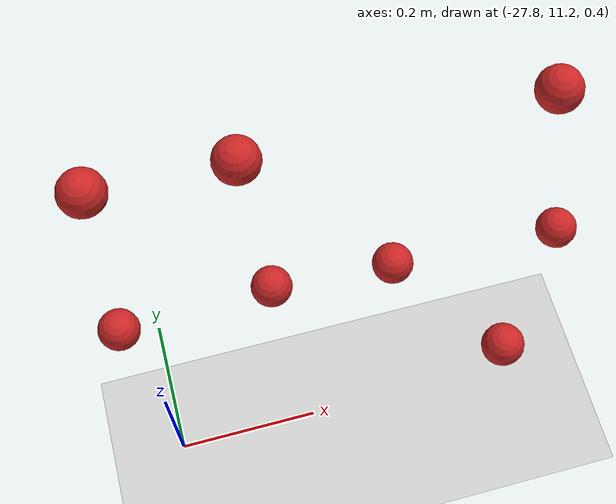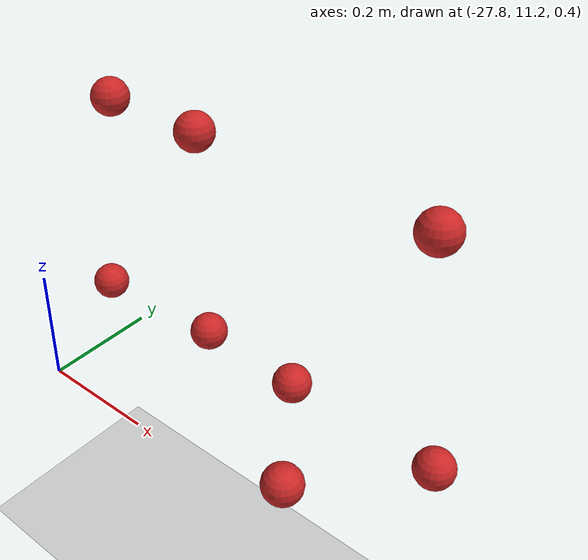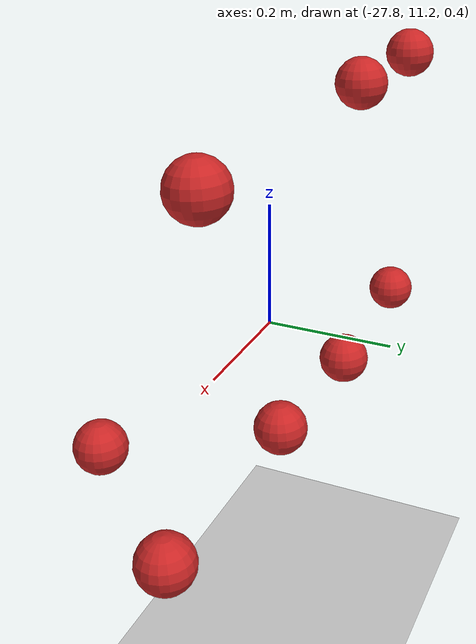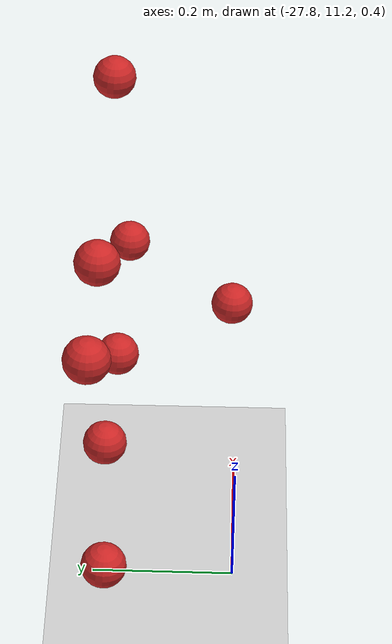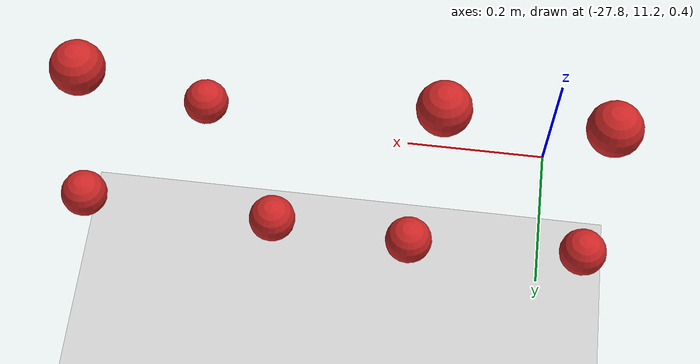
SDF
<sdf version="1.7">
 <world name="default">
  <model name="ground_plane">
   <static>1</static>
   <link name="link">
    <collision name="collision">
     <geometry><plane><normal>0 0 1</normal><size>100 100</size></plane></geometry>
     <surface>
      <contact><collide_bitmask>65535</collide_bitmask></contact>
      <friction><ode><mu>100</mu><mu2>50</mu2></ode></friction>
     </surface>
    </collision>
    <visual name="visual">
     <cast_shadows>0</cast_shadows>
     <geometry><plane><normal>0 0 1</normal><size>100 100</size></plane></geometry>
     <material>
      <script><uri>file://media/materials/scripts/gazebo.material</uri><name>Gazebo/Grey</name></script>
     </material>
    </visual>
   </link>
  </model>
  <model name="RoboCup SPL Ball_clone_clone">
   <static>0</static>
   <link name="ball">
    <inertial>
     <mass>0.0056</mass>
     <inertia>
      <ixx>2.37e-06</ixx>
      <iyy>2.37e-06</iyy>
      <izz>2.37e-06</izz>
      <ixy>0</ixy>
      <ixz>0</ixz>
      <iyz>0</iyz>
     </inertia>
    </inertial>
    <collision name="collision"><geometry><sphere><radius>0.0325</radius></sphere></geometry></collision>
    <visual name="visual">
     <geometry><sphere><radius>0.0325</radius></sphere></geometry>
     <material>
      <script><uri>file://media/materials/scripts/gazebo.material</uri><name>Gazebo/RedBright</name></script>
     </material>
    </visual>
   </link>
   <pose>-27.8541 11.3805 0.4725 0.062088 -0 0</pose>
  </model>
  <model name="RoboCup SPL Ball_clone_clone_0">
   <static>0</static>
   <link name="ball">
    <inertial>
     <mass>0.0056</mass>
     <inertia>
      <ixx>2.37e-06</ixx>
      <iyy>2.37e-06</iyy>
      <izz>2.37e-06</izz>
      <ixy>0</ixy>
      <ixz>0</ixz>
      <iyz>0</iyz>
     </inertia>
    </inertial>
    <collision name="collision"><geometry><sphere><radius>0.0325</radius></sphere></geometry></collision>
    <visual name="visual">
     <geometry><sphere><radius>0.0325</radius></sphere></geometry>
     <material>
      <script><uri>file://media/materials/scripts/gazebo.material</uri><name>Gazebo/RedBright</name></script>
     </material>
    </visual>
   </link>
   <pose>-27.6148 11.3903 0.4725 0.062088 -0 0</pose>
  </model>
  <model name="RoboCup SPL Ball_clone_clone_1">
   <static>0</static>
   <link name="ball">
    <inertial>
     <mass>0.0056</mass>
     <inertia>
      <ixx>2.37e-06</ixx>
      <iyy>2.37e-06</iyy>
      <izz>2.37e-06</izz>
      <ixy>0</ixy>
      <ixz>0</ixz>
      <iyz>0</iyz>
     </inertia>
    </inertial>
    <collision name="collision"><geometry><sphere><radius>0.0325</radius></sphere></geometry></collision>
    <visual name="visual">
     <geometry><sphere><radius>0.0325</radius></sphere></geometry>
     <material>
      <script><uri>file://media/materials/scripts/gazebo.material</uri><name>Gazebo/RedBright</name></script>
     </material>
    </visual>
   </link>
   <pose>-27.4236 11.3798 0.4725 0.062088 -0 0</pose>
  </model>
  <model name="RoboCup SPL Ball_clone_clone_3">
   <static>0</static>
   <link name="ball">
    <inertial>
     <mass>0.0056</mass>
     <inertia>
      <ixx>2.37e-06</ixx>
      <iyy>2.37e-06</iyy>
      <izz>2.37e-06</izz>
      <ixy>0</ixy>
      <ixz>0</ixz>
      <iyz>0</iyz>
     </inertia>
    </inertial>
    <collision name="collision"><geometry><sphere><radius>0.0325</radius></sphere></geometry></collision>
    <visual name="visual">
     <geometry><sphere><radius>0.0325</radius></sphere></geometry>
     <material>
      <script><uri>file://media/materials/scripts/gazebo.material</uri><name>Gazebo/RedBright</name></script>
     </material>
    </visual>
   </link>
   <pose>-27.1566 11.372 0.4725 0.062088 -0 0</pose>
  </model>
  <model name="RoboCup SPL Ball_clone_clone_1_clone">
   <static>0</static>
   <link name="ball">
    <inertial>
     <mass>0.0056</mass>
     <inertia>
      <ixx>2.37e-06</ixx>
      <iyy>2.37e-06</iyy>
      <izz>2.37e-06</izz>
      <ixy>0</ixy>
      <ixz>0</ixz>
      <iyz>0</iyz>
     </inertia>
    </inertial>
    <collision name="collision"><geometry><sphere><radius>0.0325</radius></sphere></geometry></collision>
    <visual name="visual">
     <geometry><sphere><radius>0.0325</radius></sphere></geometry>
     <material>
      <script><uri>file://media/materials/scripts/gazebo.material</uri><name>Gazebo/RedBright</name></script>
     </material>
    </visual>
   </link>
   <pose>-27.3027 11.2055 0.4725 0.062088 -0 0</pose>
  </model>
  <model name="RoboCup SPL Ball_clone_clone_2_clone_1">
   <static>0</static>
   <link name="ball">
    <inertial>
     <mass>0.0056</mass>
     <inertia>
      <ixx>2.37e-06</ixx>
      <iyy>2.37e-06</iyy>
      <izz>2.37e-06</izz>
      <ixy>0</ixy>
      <ixz>0</ixz>
      <iyz>0</iyz>
     </inertia>
    </inertial>
    <collision name="collision"><geometry><sphere><radius>0.0325</radius></sphere></geometry></collision>
    <visual name="visual">
     <geometry><sphere><radius>0.0325</radius></sphere></geometry>
     <material>
      <script><uri>file://media/materials/scripts/gazebo.material</uri><name>Gazebo/RedBright</name></script>
     </material>
    </visual>
   </link>
   <pose>-27.8293 11.3974 0.8425 0.062088 -0 0</pose>
  </model>
  <model name="RoboCup SPL Ball_clone_clone_2_clone_2">
   <static>0</static>
   <link name="ball">
    <inertial>
     <mass>0.0056</mass>
     <inertia>
      <ixx>2.37e-06</ixx>
      <iyy>2.37e-06</iyy>
      <izz>2.37e-06</izz>
      <ixy>0</ixy>
      <ixz>0</ixz>
      <iyz>0</iyz>
     </inertia>
    </inertial>
    <collision name="collision"><geometry><sphere><radius>0.0325</radius></sphere></geometry></collision>
    <visual name="visual">
     <geometry><sphere><radius>0.0325</radius></sphere></geometry>
     <material>
      <script><uri>file://media/materials/scripts/gazebo.material</uri><name>Gazebo/RedBright</name></script>
     </material>
    </visual>
   </link>
   <pose>-27.6369 11.3935 0.8425 0.062088 -0 0</pose>
  </model>
  <model name="RoboCup SPL Ball_clone_clone_2_clone_4">
   <static>0</static>
   <link name="ball">
    <inertial>
     <mass>0.0056</mass>
     <inertia>
      <ixx>2.37e-06</ixx>
      <iyy>2.37e-06</iyy>
      <izz>2.37e-06</izz>
      <ixy>0</ixy>
      <ixz>0</ixz>
      <iyz>0</iyz>
     </inertia>
    </inertial>
    <collision name="collision"><geometry><sphere><radius>0.0325</radius></sphere></geometry></collision>
    <visual name="visual">
     <geometry><sphere><radius>0.0325</radius></sphere></geometry>
     <material>
      <script><uri>file://media/materials/scripts/gazebo.material</uri><name>Gazebo/RedBright</name></script>
     </material>
    </visual>
   </link>
   <pose>-27.2136 11.389 0.8425 0.062088 -0 0</pose>
  </model>
 </world>
</sdf>
